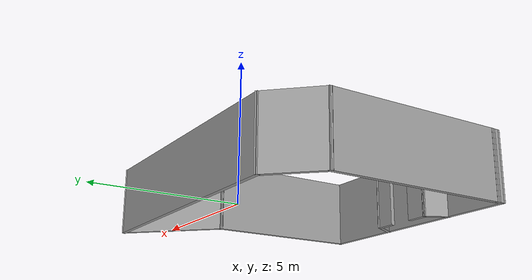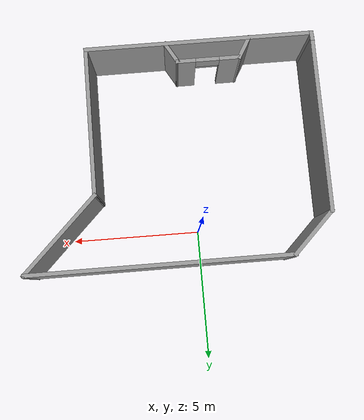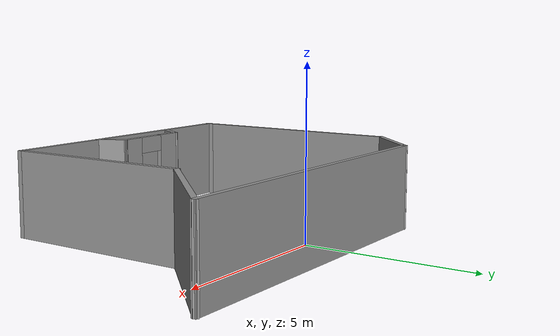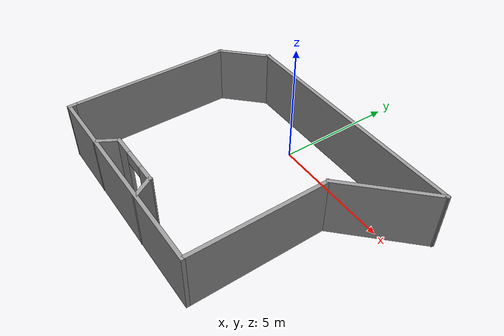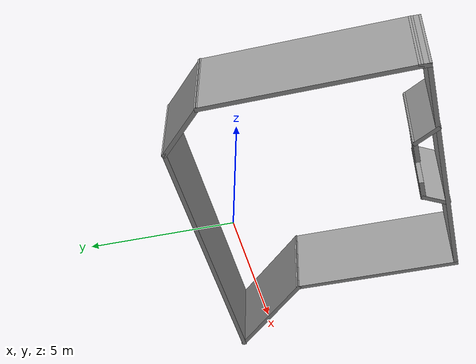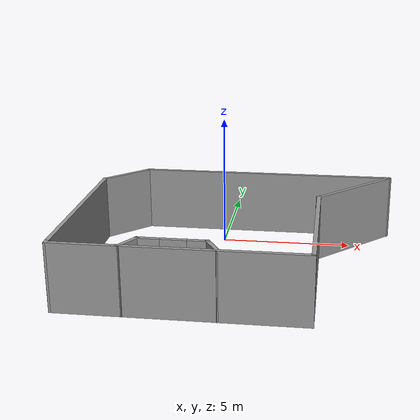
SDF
<?xml version='1.0'?>
<sdf version='1.6'>
  <model name='lilhouse'>
    <pose frame=''>0.827462 -2.85247 0 0 -0 0</pose>
    <link name='Wall_10'>
      <collision name='Wall_10_Collision'>
        <geometry>
          <box>
            <size>8.75 0.15 2.5</size>
          </box>
        </geometry>
        <pose frame=''>0 0 1.25 0 -0 0</pose>
      </collision>
      <visual name='Wall_10_Visual'>
        <pose frame=''>0 0 1.25 0 -0 0</pose>
        <geometry>
          <box>
            <size>8.75 0.15 2.5</size>
          </box>
        </geometry>
        <material>
          <script>
            <uri>file://media/materials/scripts/gazebo.material</uri>
            <name>Gazebo/Grey</name>
          </script>
          <ambient>1 1 1 1</ambient>
        </material>
        <meta>
          <layer>0</layer>
        </meta>
      </visual>
      <pose frame=''>-1.3549 -4.16496 0 0 -0 3.14159</pose>
    </link>
    <link name='Wall_11'>
      <collision name='Wall_11_Collision'>
        <geometry>
          <box>
            <size>0.387769 0.15 2.5</size>
          </box>
        </geometry>
        <pose frame=''>0 0 1.25 0 -0 0</pose>
      </collision>
      <visual name='Wall_11_Visual'>
        <pose frame=''>0 0 1.25 0 -0 0</pose>
        <geometry>
          <box>
            <size>0.387769 0.15 2.5</size>
          </box>
        </geometry>
        <material>
          <script>
            <uri>file://media/materials/scripts/gazebo.material</uri>
            <name>Gazebo/Grey</name>
          </script>
          <ambient>1 1 1 1</ambient>
        </material>
        <meta>
          <layer>0</layer>
        </meta>
      </visual>
      <pose frame=''>-5.66118 -4.04625 0 0 -0 1.62366</pose>
    </link>
    <link name='Wall_13'>
      <collision name='Wall_13_Collision'>
        <geometry>
          <box>
            <size>1 0.15 2.5</size>
          </box>
        </geometry>
        <pose frame=''>0 0 1.25 0 -0 0</pose>
      </collision>
      <visual name='Wall_13_Visual'>
        <pose frame=''>0 0 1.25 0 -0 0</pose>
        <geometry>
          <box>
            <size>1 0.15 2.5</size>
          </box>
        </geometry>
        <material>
          <script>
            <uri>file://media/materials/scripts/gazebo.material</uri>
            <name>Gazebo/Grey</name>
          </script>
          <ambient>1 1 1 1</ambient>
        </material>
        <meta>
          <layer>0</layer>
        </meta>
      </visual>
      <pose frame=''>-3.05977 -3.79295 0 0 -0 1.0472</pose>
    </link>
    <link name='Wall_14'>
      <pose frame=''>-1.67227 -3.42489 0 0 -0 0</pose>
      <visual name='Wall_14_Visual_0'>
        <pose frame=''>-0.828863 0 1.25 0 -0 0</pose>
        <geometry>
          <box>
            <size>0.842273 0.15 2.5</size>
          </box>
        </geometry>
        <material>
          <script>
            <uri>file://media/materials/scripts/gazebo.material</uri>
            <name>Gazebo/Grey</name>
          </script>
          <ambient>1 1 1 1</ambient>
        </material>
        <meta>
          <layer>0</layer>
        </meta>
      </visual>
      <collision name='Wall_14_Collision_0'>
        <geometry>
          <box>
            <size>0.842273 0.15 2.5</size>
          </box>
        </geometry>
        <pose frame=''>-0.828863 0 1.25 0 -0 0</pose>
      </collision>
      <visual name='Wall_14_Visual_1'>
        <pose frame=''>0.871137 0 1.25 0 -0 0</pose>
        <geometry>
          <box>
            <size>0.757727 0.15 2.5</size>
          </box>
        </geometry>
        <material>
          <script>
            <uri>file://media/materials/scripts/gazebo.material</uri>
            <name>Gazebo/Grey</name>
          </script>
          <ambient>1 1 1 1</ambient>
        </material>
        <meta>
          <layer>0</layer>
        </meta>
      </visual>
      <collision name='Wall_14_Collision_1'>
        <geometry>
          <box>
            <size>0.757727 0.15 2.5</size>
          </box>
        </geometry>
        <pose frame=''>0.871137 0 1.25 0 -0 0</pose>
      </collision>
      <visual name='Wall_14_Visual_2'>
        <pose frame=''>0.042273 0 2.25 0 -0 0</pose>
        <geometry>
          <box>
            <size>0.9 0.15 0.5</size>
          </box>
        </geometry>
        <material>
          <script>
            <uri>file://media/materials/scripts/gazebo.material</uri>
            <name>Gazebo/Grey</name>
          </script>
          <ambient>1 1 1 1</ambient>
        </material>
        <meta>
          <layer>0</layer>
        </meta>
      </visual>
      <collision name='Wall_14_Collision_2'>
        <geometry>
          <box>
            <size>0.9 0.15 0.5</size>
          </box>
        </geometry>
        <pose frame=''>0.042273 0 2.25 0 -0 0</pose>
      </collision>
    </link>
    <link name='Wall_15'>
      <collision name='Wall_15_Collision'>
        <geometry>
          <box>
            <size>1 0.15 2.5</size>
          </box>
        </geometry>
        <pose frame=''>0 0 1.25 0 -0 0</pose>
      </collision>
      <visual name='Wall_15_Visual'>
        <pose frame=''>0 0 1.25 0 -0 0</pose>
        <geometry>
          <box>
            <size>1 0.15 2.5</size>
          </box>
        </geometry>
        <material>
          <script>
            <uri>file://media/materials/scripts/gazebo.material</uri>
            <name>Gazebo/Grey</name>
          </script>
          <ambient>1 1 1 1</ambient>
        </material>
        <meta>
          <layer>0</layer>
        </meta>
      </visual>
      <pose frame=''>-0.284772 -3.79295 0 0 0 -1.0472</pose>
    </link>
    <link name='Wall_4'>
      <collision name='Wall_4_Collision'>
        <geometry>
          <box>
            <size>6.75 0.15 2.5</size>
          </box>
        </geometry>
        <pose frame=''>0 0 1.25 0 -0 0</pose>
      </collision>
      <visual name='Wall_4_Visual'>
        <pose frame=''>0 0 1.25 0 -0 0</pose>
        <geometry>
          <box>
            <size>6.75 0.15 2.5</size>
          </box>
        </geometry>
        <material>
          <script>
            <uri>file://media/materials/scripts/gazebo.material</uri>
            <name>Gazebo/Grey</name>
          </script>
          <ambient>1 1 1 1</ambient>
        </material>
        <meta>
          <layer>0</layer>
        </meta>
      </visual>
      <pose frame=''>-5.66746 -0.627527 0 0 -0 1.5708</pose>
    </link>
    <link name='Wall_5'>
      <collision name='Wall_5_Collision'>
        <geometry>
          <box>
            <size>2.25 0.15 2.5</size>
          </box>
        </geometry>
        <pose frame=''>0 0 1.25 0 -0 0</pose>
      </collision>
      <visual name='Wall_5_Visual'>
        <pose frame=''>0 0 1.25 0 -0 0</pose>
        <geometry>
          <box>
            <size>2.25 0.15 2.5</size>
          </box>
        </geometry>
        <material>
          <script>
            <uri>file://media/materials/scripts/gazebo.material</uri>
            <name>Gazebo/Grey</name>
          </script>
          <ambient>1 1 1 1</ambient>
        </material>
        <meta>
          <layer>0</layer>
        </meta>
      </visual>
      <pose frame=''>-4.925 3.41493 0 0 -0 0.785398</pose>
    </link>
    <link name='Wall_6'>
      <collision name='Wall_6_Collision'>
        <geometry>
          <box>
            <size>10 0.15 2.5</size>
          </box>
        </geometry>
        <pose frame=''>0 0 1.25 0 -0 0</pose>
      </collision>
      <visual name='Wall_6_Visual'>
        <pose frame=''>0 0 1.25 0 -0 0</pose>
        <geometry>
          <box>
            <size>10 0.15 2.5</size>
          </box>
        </geometry>
        <material>
          <script>
            <uri>file://media/materials/scripts/gazebo.material</uri>
            <name>Gazebo/Grey</name>
          </script>
          <ambient>1 1 1 1</ambient>
        </material>
        <meta>
          <layer>0</layer>
        </meta>
      </visual>
      <pose frame=''>0.742462 4.1574 0 0 -0 0</pose>
    </link>
    <link name='Wall_7'>
      <collision name='Wall_7_Collision'>
        <geometry>
          <box>
            <size>4 0.15 2.5</size>
          </box>
        </geometry>
        <pose frame=''>0 0 1.25 0 -0 0</pose>
      </collision>
      <visual name='Wall_7_Visual'>
        <pose frame=''>0 0 1.25 0 -0 0</pose>
        <geometry>
          <box>
            <size>4 0.15 2.5</size>
          </box>
        </geometry>
        <material>
          <script>
            <uri>file://media/materials/scripts/gazebo.material</uri>
            <name>Gazebo/Grey</name>
          </script>
          <ambient>1 1 1 1</ambient>
        </material>
        <meta>
          <layer>0</layer>
        </meta>
      </visual>
      <pose frame=''>4.30628 2.79622 0 0 0 -2.35619</pose>
    </link>
    <link name='Wall_9'>
      <collision name='Wall_9_Collision'>
        <geometry>
          <box>
            <size>5.75 0.15 2.5</size>
          </box>
        </geometry>
        <pose frame=''>0 0 1.25 0 -0 0</pose>
      </collision>
      <visual name='Wall_9_Visual'>
        <pose frame=''>0 0 1.25 0 -0 0</pose>
        <geometry>
          <box>
            <size>5.75 0.15 2.5</size>
          </box>
        </geometry>
        <material>
          <script>
            <uri>file://media/materials/scripts/gazebo.material</uri>
            <name>Gazebo/Grey</name>
          </script>
          <ambient>1 1 1 1</ambient>
        </material>
        <meta>
          <layer>0</layer>
        </meta>
      </visual>
      <pose frame=''>2.9451 -1.36496 0 0 0 -1.5708</pose>
    </link>
    <static>1</static>
  </model>
</sdf>
